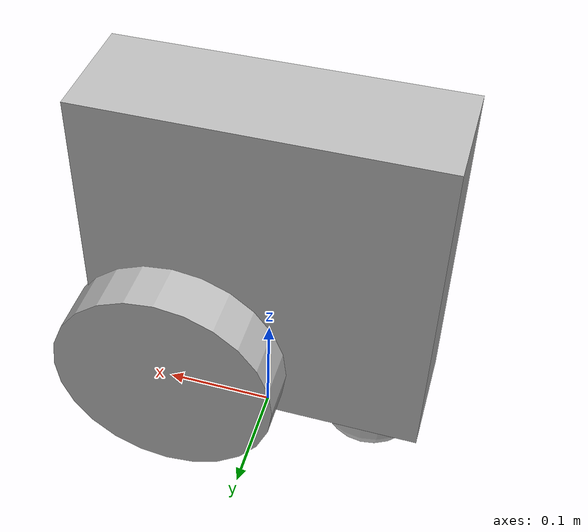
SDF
<?xml version='1.0'?>
<!-- from http://gazebosim.org/tutorials?tut=build_robot -->
<sdf version='1.4'>
    <model name="moving_obstacle">
        <static>false</static>
        <link name='chassis'>
            <inertial>
                <mass>1.0</mass>
            </inertial>
            <pose>0 0 .2 0 0 0</pose>
                <collision name='collision'>
                <geometry>
                    <box>
                    <size>.3 .1 .3</size>
                    </box>
                </geometry>
            </collision>

            <visual name='visual'>
                <geometry>
                    <box>
                    <size>.3 .1 .3</size>
                    </box>
                </geometry>
            </visual>

            <collision name='caster_collision'>
                <pose>-0.1 0 -0.15 0 0 0</pose>
                <geometry>
                    <sphere>
                    <radius>.05</radius>
                </sphere>
                </geometry>

                <surface>
                <friction>
                    <ode>
                    <mu>0</mu>
                    <mu2>0</mu2>
                    <slip1>1.0</slip1>
                    <slip2>1.0</slip2>
                    </ode>
                </friction>
                </surface>
            </collision>

            <visual name='caster_visual'>
                <pose>-0.1 0 -0.15 0 0 0</pose>
                <geometry>
                <sphere>
                    <radius>.05</radius>
                </sphere>
                </geometry>
            </visual>
        </link>
        <link name="left_wheel">
            <pose>0.07 0.07 0.1 0 1.5707 1.5707</pose>
            <collision name="collision">
                <geometry>
                <cylinder>
                    <radius>.1</radius>
                    <length>.05</length>
                </cylinder>
                </geometry>
            </collision>
            <visual name="visual">
                <geometry>
                <cylinder>
                    <radius>.1</radius>
                    <length>.05</length>
                </cylinder>
                </geometry>
            </visual>
        </link>

        <link name="right_wheel">
        <pose>0.07 -0.07 0.1 0 1.5707 1.5707</pose>
        <collision name="collision">
            <geometry>
            <cylinder>
                <radius>.1</radius>
                <length>.05</length>
            </cylinder>
            </geometry>
        </collision>
        <visual name="visual">
            <geometry>
            <cylinder>
                <radius>.1</radius>
                <length>.05</length>
            </cylinder>
            </geometry>
        </visual>
        </link>

        <joint type="revolute" name="left_wheel_hinge">
        <pose>0 0 -0.03 0 0 0</pose>
        <child>left_wheel</child>
        <parent>chassis</parent>
        <axis>
            <xyz>0 1 0</xyz>
        </axis>
        </joint>

        <joint type="revolute" name="right_wheel_hinge">
        <pose>0 0 0.03 0 0 0</pose>
        <child>right_wheel</child>
        <parent>chassis</parent>
        <axis>
            <xyz>0 1 0</xyz>
        </axis>
        </joint>
    </model>
</sdf>
